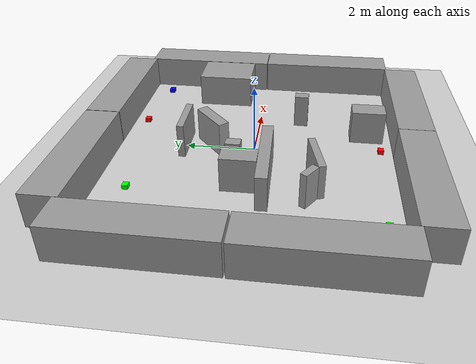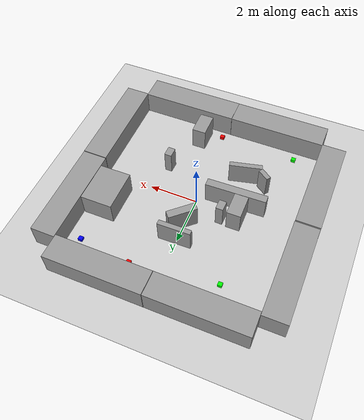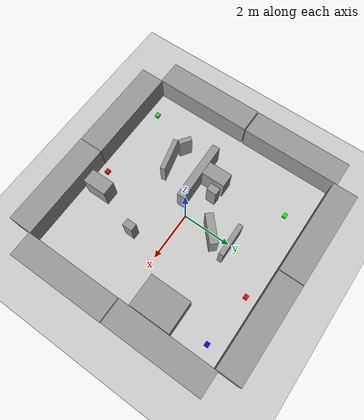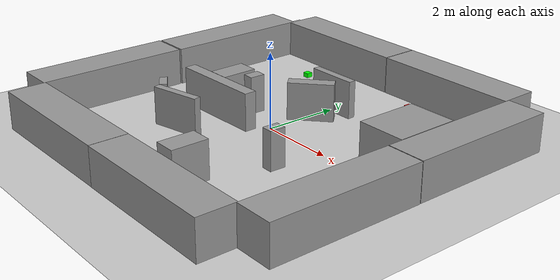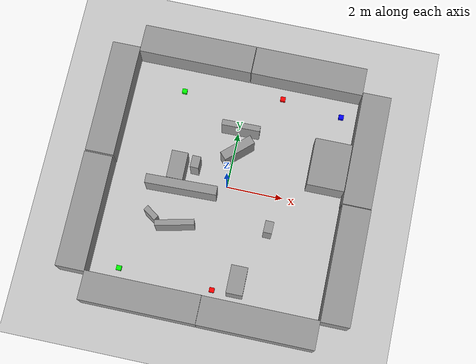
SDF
<sdf version="1.7">
 <world name="default">
  <light name="sun" type="directional">
   <cast_shadows>0</cast_shadows>
   <pose>0 0 10 0 -0 0</pose>
   <diffuse>0.8 0.8 0.8 1</diffuse>
   <specular>0.2 0.2 0.2 1</specular>
   <attenuation>
    <range>1000</range>
    <constant>0.9</constant>
    <linear>0.01</linear>
    <quadratic>0.001</quadratic>
   </attenuation>
   <direction>-0.5 0.1 -0.9</direction>
   <spot><inner_angle>0</inner_angle><outer_angle>0</outer_angle><falloff>0</falloff></spot>
  </light>
  <model name="ground_plane">
   <static>1</static>
   <link name="link">
    <collision name="collision">
     <geometry><plane><normal>0 0 1</normal><size>100 100</size></plane></geometry>
     <surface><friction><ode><mu>100</mu><mu2>50</mu2></ode></friction></surface>
    </collision>
    <visual name="visual">
     <cast_shadows>0</cast_shadows>
     <geometry><plane><normal>0 0 1</normal><size>100 100</size></plane></geometry>
     <material>
      <script><uri>file://media/materials/scripts/gazebo.material</uri><name>Gazebo/Grey</name></script>
     </material>
    </visual>
   </link>
  </model>
  <gravity>0 0 -9.8</gravity>
  <scene><ambient>0.4 0.4 0.4 1</ambient><background>0.7 0.7 0.7 1</background><shadows>1</shadows></scene>
  <magnetic_field>6e-06 2.3e-05 -4.2e-05</magnetic_field>
  <atmosphere type="adiabatic"/>
  <physics type="ode">
   <max_step_size>0.001</max_step_size>
   <real_time_factor>1</real_time_factor>
   <real_time_update_rate>1000</real_time_update_rate>
  </physics>
  <audio><device>default</device></audio>
  <spherical_coordinates>
   <surface_model>EARTH_WGS84</surface_model>
   <latitude_deg>0</latitude_deg>
   <longitude_deg>0</longitude_deg>
   <elevation>0</elevation>
   <heading_deg>0</heading_deg>
  </spherical_coordinates>
  <model name="unit_box">
   <pose>4.51241 -2.01446 0.499997 -0 5e-06 0.000332</pose>
   <link name="link">
    <inertial>
     <mass>1</mass>
     <inertia>
      <ixx>0.166667</ixx>
      <ixy>0</ixy>
      <ixz>0</ixz>
      <iyy>0.166667</iyy>
      <iyz>0</iyz>
      <izz>0.166667</izz>
     </inertia>
    </inertial>
    <collision name="collision"><geometry><box><size>1 4.0622 1</size></box></geometry></collision>
    <visual name="visual">
     <geometry><box><size>1 4.0622 1</size></box></geometry>
     <material>
      <script><name>Gazebo/Grey</name><uri>file://media/materials/scripts/gazebo.material</uri></script>
     </material>
    </visual>
   </link>
  </model>
  <model name="unit_box_clone">
   <pose>4.50288 2.07157 0.499196 0.000396 -0 1e-06</pose>
   <link name="link">
    <inertial>
     <mass>1</mass>
     <inertia>
      <ixx>0.166667</ixx>
      <ixy>0</ixy>
      <ixz>0</ixz>
      <iyy>0.166667</iyy>
      <iyz>0</iyz>
      <izz>0.166667</izz>
     </inertia>
    </inertial>
    <collision name="collision"><geometry><box><size>1 4.0622 1</size></box></geometry></collision>
    <visual name="visual">
     <geometry><box><size>1 4.0622 1</size></box></geometry>
     <material>
      <script><name>Gazebo/Grey</name><uri>file://media/materials/scripts/gazebo.material</uri></script>
     </material>
    </visual>
   </link>
  </model>
  <model name="unit_box_0">
   <pose>2.01016 4.48936 0.499283 0 -0.000362 -2e-06</pose>
   <link name="link">
    <inertial>
     <mass>1</mass>
     <inertia>
      <ixx>0.166667</ixx>
      <ixy>0</ixy>
      <ixz>0</ixz>
      <iyy>0.166667</iyy>
      <iyz>0</iyz>
      <izz>0.166667</izz>
     </inertia>
    </inertial>
    <collision name="collision"><geometry><box><size>3.96686 1 1</size></box></geometry></collision>
    <visual name="visual">
     <geometry><box><size>3.96686 1 1</size></box></geometry>
     <material>
      <script><name>Gazebo/Grey</name><uri>file://media/materials/scripts/gazebo.material</uri></script>
     </material>
    </visual>
   </link>
  </model>
  <model name="unit_box_0_clone">
   <pose>-1.99939 4.49012 0.499239 0 -0.000379 0</pose>
   <link name="link">
    <inertial>
     <mass>1</mass>
     <inertia>
      <ixx>0.166667</ixx>
      <ixy>0</ixy>
      <ixz>0</ixz>
      <iyy>0.166667</iyy>
      <iyz>0</iyz>
      <izz>0.166667</izz>
     </inertia>
    </inertial>
    <collision name="collision"><geometry><box><size>4.01582 1 1</size></box></geometry></collision>
    <visual name="visual">
     <geometry><box><size>4.01582 1 1</size></box></geometry>
     <material>
      <script><name>Gazebo/Grey</name><uri>file://media/materials/scripts/gazebo.material</uri></script>
     </material>
    </visual>
   </link>
  </model>
  <model name="unit_box_0_clone_clone">
   <pose>2.0043 -4.50415 0.499239 0 -0.000379 -7e-06</pose>
   <link name="link">
    <inertial>
     <mass>1</mass>
     <inertia>
      <ixx>0.166667</ixx>
      <ixy>0</ixy>
      <ixz>0</ixz>
      <iyy>0.166667</iyy>
      <iyz>0</iyz>
      <izz>0.166667</izz>
     </inertia>
    </inertial>
    <collision name="collision"><geometry><box><size>4.01582 1 1</size></box></geometry></collision>
    <visual name="visual">
     <geometry><box><size>4.01582 1 1</size></box></geometry>
     <material>
      <script><name>Gazebo/Grey</name><uri>file://media/materials/scripts/gazebo.material</uri></script>
     </material>
    </visual>
   </link>
  </model>
  <model name="unit_box_clone_0">
   <pose>-4.52525 -2.014 0.499997 0 -5e-06 1e-06</pose>
   <link name="link">
    <inertial>
     <mass>1</mass>
     <inertia>
      <ixx>0.166667</ixx>
      <ixy>0</ixy>
      <ixz>0</ixz>
      <iyy>0.166667</iyy>
      <iyz>0</iyz>
      <izz>0.166667</izz>
     </inertia>
    </inertial>
    <collision name="collision"><geometry><box><size>1 4.0622 1</size></box></geometry></collision>
    <visual name="visual">
     <geometry><box><size>1 4.0622 1</size></box></geometry>
     <material>
      <script><name>Gazebo/Grey</name><uri>file://media/materials/scripts/gazebo.material</uri></script>
     </material>
    </visual>
   </link>
  </model>
  <model name="unit_box_clone_1">
   <pose>-4.51398 2.09797 0.499196 0.000396 -0 1e-06</pose>
   <link name="link">
    <inertial>
     <mass>1</mass>
     <inertia>
      <ixx>0.166667</ixx>
      <ixy>0</ixy>
      <ixz>0</ixz>
      <iyy>0.166667</iyy>
      <iyz>0</iyz>
      <izz>0.166667</izz>
     </inertia>
    </inertial>
    <collision name="collision"><geometry><box><size>1 4.0622 1</size></box></geometry></collision>
    <visual name="visual">
     <geometry><box><size>1 4.0622 1</size></box></geometry>
     <material>
      <script><name>Gazebo/Grey</name><uri>file://media/materials/scripts/gazebo.material</uri></script>
     </material>
    </visual>
   </link>
  </model>
  <model name="unit_box_0_clone_clone_clone">
   <pose>-2.01688 -4.49982 0.499239 -0 -0.000379 1.3e-05</pose>
   <link name="link">
    <inertial>
     <mass>1</mass>
     <inertia>
      <ixx>0.166667</ixx>
      <ixy>0</ixy>
      <ixz>0</ixz>
      <iyy>0.166667</iyy>
      <iyz>0</iyz>
      <izz>0.166667</izz>
     </inertia>
    </inertial>
    <collision name="collision"><geometry><box><size>4.01582 1 1</size></box></geometry></collision>
    <visual name="visual">
     <geometry><box><size>4.01582 1 1</size></box></geometry>
     <material>
      <script><name>Gazebo/Grey</name><uri>file://media/materials/scripts/gazebo.material</uri></script>
     </material>
    </visual>
   </link>
  </model>
  <model name="unit_box_1_clone_1_clone_clone_1">
   <link name="link">
    <inertial>
     <mass>1</mass>
     <inertia>
      <ixx>0.166667</ixx>
      <ixy>0</ixy>
      <ixz>0</ixz>
      <iyy>0.166667</iyy>
      <iyz>0</iyz>
      <izz>0.166667</izz>
     </inertia>
    </inertial>
    <visual name="visual">
     <geometry><box><size>0.177426 0.164052 0.124949</size></box></geometry>
     <material>
      <script><name>Gazebo/Grey</name><uri>file://media/materials/scripts/gazebo.material</uri></script>
      <shader type="pixel"><normal_map>__default__</normal_map></shader>
      <ambient>0 0 1 1</ambient>
      <diffuse>0 0 1 1</diffuse>
      <specular>0 0 1 1</specular>
      <emissive>0 0 1 1</emissive>
      <lighting>1</lighting>
     </material>
    </visual>
    <collision name="collision">
     <geometry><box><size>0.177426 0.164052 0.124949</size></box></geometry>
     <surface>
      <friction>
       <ode><mu>1</mu><mu2>1</mu2><fdir1>0 0 0</fdir1><slip1>0</slip1><slip2>0</slip2></ode>
       <torsional>
        <coefficient>1</coefficient>
        <patch_radius>0</patch_radius>
        <surface_radius>0</surface_radius>
        <use_patch_radius>1</use_patch_radius>
        <ode><slip>0</slip></ode>
       </torsional>
      </friction>
      <bounce><restitution_coefficient>0</restitution_coefficient><threshold>1e+06</threshold></bounce>
      <contact>
       <collide_without_contact>0</collide_without_contact>
       <collide_without_contact_bitmask>1</collide_without_contact_bitmask>
       <collide_bitmask>1</collide_bitmask>
       <ode>
        <soft_cfm>0</soft_cfm>
        <soft_erp>0.2</soft_erp>
        <kp>1e+13</kp>
        <kd>1</kd>
        <max_vel>0.01</max_vel>
        <min_depth>0</min_depth>
       </ode>
       <bullet>
        <split_impulse>1</split_impulse>
        <split_impulse_penetration_threshold>-0.01</split_impulse_penetration_threshold>
        <soft_cfm>0</soft_cfm>
        <soft_erp>0.2</soft_erp>
        <kp>1e+13</kp>
        <kd>1</kd>
       </bullet>
      </contact>
     </surface>
    </collision>
   </link>
   <static>0</static>
   <pose>3.46266 3.35515 0.062475 -2e-06 2e-06 0.002748</pose>
  </model>
  <model name="unit_box_1_clone_1_clone">
   <link name="link">
    <inertial>
     <mass>1</mass>
     <inertia>
      <ixx>0.166667</ixx>
      <ixy>0</ixy>
      <ixz>0</ixz>
      <iyy>0.166667</iyy>
      <iyz>0</iyz>
      <izz>0.166667</izz>
     </inertia>
    </inertial>
    <visual name="visual">
     <geometry><box><size>0.177426 0.164052 0.124949</size></box></geometry>
     <material>
      <script><name>Gazebo/Grey</name><uri>file://media/materials/scripts/gazebo.material</uri></script>
      <shader type="pixel"><normal_map>__default__</normal_map></shader>
      <ambient>1 0 0 1</ambient>
      <diffuse>1 0 0 1</diffuse>
      <specular>1 0 0 1</specular>
      <emissive>1 0 0 1</emissive>
      <lighting>1</lighting>
     </material>
    </visual>
    <collision name="collision">
     <geometry><box><size>0.177426 0.164052 0.124949</size></box></geometry>
     <surface>
      <friction>
       <ode><mu>1</mu><mu2>1</mu2><fdir1>0 0 0</fdir1><slip1>0</slip1><slip2>0</slip2></ode>
       <torsional>
        <coefficient>1</coefficient>
        <patch_radius>0</patch_radius>
        <surface_radius>0</surface_radius>
        <use_patch_radius>1</use_patch_radius>
        <ode><slip>0</slip></ode>
       </torsional>
      </friction>
      <bounce><restitution_coefficient>0</restitution_coefficient><threshold>1e+06</threshold></bounce>
      <contact>
       <collide_without_contact>0</collide_without_contact>
       <collide_without_contact_bitmask>1</collide_without_contact_bitmask>
       <collide_bitmask>1</collide_bitmask>
       <ode>
        <soft_cfm>0</soft_cfm>
        <soft_erp>0.2</soft_erp>
        <kp>1e+13</kp>
        <kd>1</kd>
        <max_vel>0.01</max_vel>
        <min_depth>0</min_depth>
       </ode>
       <bullet>
        <split_impulse>1</split_impulse>
        <split_impulse_penetration_threshold>-0.01</split_impulse_penetration_threshold>
        <soft_cfm>0</soft_cfm>
        <soft_erp>0.2</soft_erp>
        <kp>1e+13</kp>
        <kd>1</kd>
       </bullet>
      </contact>
     </surface>
    </collision>
   </link>
   <static>0</static>
   <pose>0.250397 -3.65866 0.062474 -2e-06 4e-06 -1.2e-05</pose>
  </model>
  <model name="unit_box_1_clone_1_clone_clone_3">
   <link name="link">
    <inertial>
     <mass>1</mass>
     <inertia>
      <ixx>0.166667</ixx>
      <ixy>0</ixy>
      <ixz>0</ixz>
      <iyy>0.166667</iyy>
      <iyz>0</iyz>
      <izz>0.166667</izz>
     </inertia>
    </inertial>
    <visual name="visual">
     <geometry><box><size>0.177426 0.164052 0.124949</size></box></geometry>
     <material>
      <script><name>Gazebo/Grey</name><uri>file://media/materials/scripts/gazebo.material</uri></script>
      <shader type="pixel"><normal_map>__default__</normal_map></shader>
      <ambient>1 0 0 1</ambient>
      <diffuse>1 0 0 1</diffuse>
      <specular>1 0 0 1</specular>
      <emissive>1 0 0 1</emissive>
      <lighting>1</lighting>
     </material>
    </visual>
    <collision name="collision">
     <geometry><box><size>0.177426 0.164052 0.124949</size></box></geometry>
     <surface>
      <friction>
       <ode><mu>1</mu><mu2>1</mu2><fdir1>0 0 0</fdir1><slip1>0</slip1><slip2>0</slip2></ode>
       <torsional>
        <coefficient>1</coefficient>
        <patch_radius>0</patch_radius>
        <surface_radius>0</surface_radius>
        <use_patch_radius>1</use_patch_radius>
        <ode><slip>0</slip></ode>
       </torsional>
      </friction>
      <bounce><restitution_coefficient>0</restitution_coefficient><threshold>1e+06</threshold></bounce>
      <contact>
       <collide_without_contact>0</collide_without_contact>
       <collide_without_contact_bitmask>1</collide_without_contact_bitmask>
       <collide_bitmask>1</collide_bitmask>
       <ode>
        <soft_cfm>0</soft_cfm>
        <soft_erp>0.2</soft_erp>
        <kp>1e+13</kp>
        <kd>1</kd>
        <max_vel>0.01</max_vel>
        <min_depth>0</min_depth>
       </ode>
       <bullet>
        <split_impulse>1</split_impulse>
        <split_impulse_penetration_threshold>-0.01</split_impulse_penetration_threshold>
        <soft_cfm>0</soft_cfm>
        <soft_erp>0.2</soft_erp>
        <kp>1e+13</kp>
        <kd>1</kd>
       </bullet>
      </contact>
     </surface>
    </collision>
   </link>
   <static>0</static>
   <pose>1.29578 3.58646 0.062475 0 -4e-06 -1.8e-05</pose>
  </model>
  <model name="unit_box_1_clone_1_clone_clone_2_clone">
   <link name="link">
    <inertial>
     <mass>1</mass>
     <inertia>
      <ixx>0.166667</ixx>
      <ixy>0</ixy>
      <ixz>0</ixz>
      <iyy>0.166667</iyy>
      <iyz>0</iyz>
      <izz>0.166667</izz>
     </inertia>
    </inertial>
    <visual name="visual">
     <geometry><box><size>0.177426 0.164052 0.124949</size></box></geometry>
     <material>
      <script><name>Gazebo/Grey</name><uri>file://media/materials/scripts/gazebo.material</uri></script>
      <shader type="pixel"><normal_map>__default__</normal_map></shader>
      <ambient>0 1 0 1</ambient>
      <diffuse>0 1 0 1</diffuse>
      <specular>0 1 0 1</specular>
      <emissive>0 1 0 1</emissive>
      <lighting>1</lighting>
     </material>
    </visual>
    <collision name="collision">
     <geometry><box><size>0.177426 0.164052 0.124949</size></box></geometry>
     <surface>
      <friction>
       <ode><mu>1</mu><mu2>1</mu2><fdir1>0 0 0</fdir1><slip1>0</slip1><slip2>0</slip2></ode>
       <torsional>
        <coefficient>1</coefficient>
        <patch_radius>0</patch_radius>
        <surface_radius>0</surface_radius>
        <use_patch_radius>1</use_patch_radius>
        <ode><slip>0</slip></ode>
       </torsional>
      </friction>
      <bounce><restitution_coefficient>0</restitution_coefficient><threshold>1e+06</threshold></bounce>
      <contact>
       <collide_without_contact>0</collide_without_contact>
       <collide_without_contact_bitmask>1</collide_without_contact_bitmask>
       <collide_bitmask>1</collide_bitmask>
       <ode>
        <soft_cfm>0</soft_cfm>
        <soft_erp>0.2</soft_erp>
        <kp>1e+13</kp>
        <kd>1</kd>
        <max_vel>0.01</max_vel>
        <min_depth>0</min_depth>
       </ode>
       <bullet>
        <split_impulse>1</split_impulse>
        <split_impulse_penetration_threshold>-0.01</split_impulse_penetration_threshold>
        <soft_cfm>0</soft_cfm>
        <soft_erp>0.2</soft_erp>
        <kp>1e+13</kp>
        <kd>1</kd>
       </bullet>
      </contact>
     </surface>
    </collision>
   </link>
   <static>0</static>
   <pose>-3.03616 -3.57988 0.062475 -2e-06 2e-06 1.5e-05</pose>
  </model>
  <model name="unit_box_1_clone_0_clone">
   <link name="link">
    <inertial>
     <mass>1</mass>
     <inertia>
      <ixx>0.166667</ixx>
      <ixy>0</ixy>
      <ixz>0</ixz>
      <iyy>0.166667</iyy>
      <iyz>0</iyz>
      <izz>0.166667</izz>
     </inertia>
    </inertial>
    <visual name="visual">
     <geometry><box><size>1.34724 0.197957 1</size></box></geometry>
     <material>
      <script><name>Gazebo/Grey</name><uri>file://media/materials/scripts/gazebo.material</uri></script>
      <shader type="pixel"/>
     </material>
    </visual>
    <collision name="collision">
     <geometry><box><size>1.34724 0.197957 1</size></box></geometry>
     <surface>
      <friction>
       <ode><mu>1</mu><mu2>1</mu2><fdir1>0 0 0</fdir1><slip1>0</slip1><slip2>0</slip2></ode>
       <torsional>
        <coefficient>1</coefficient>
        <patch_radius>0</patch_radius>
        <surface_radius>0</surface_radius>
        <use_patch_radius>1</use_patch_radius>
        <ode><slip>0</slip></ode>
       </torsional>
      </friction>
      <bounce><restitution_coefficient>0</restitution_coefficient><threshold>1e+06</threshold></bounce>
      <contact>
       <collide_without_contact>0</collide_without_contact>
       <collide_without_contact_bitmask>1</collide_without_contact_bitmask>
       <collide_bitmask>1</collide_bitmask>
       <ode>
        <soft_cfm>0</soft_cfm>
        <soft_erp>0.2</soft_erp>
        <kp>1e+13</kp>
        <kd>1</kd>
        <max_vel>0.01</max_vel>
        <min_depth>0</min_depth>
       </ode>
       <bullet>
        <split_impulse>1</split_impulse>
        <split_impulse_penetration_threshold>-0.01</split_impulse_penetration_threshold>
        <soft_cfm>0</soft_cfm>
        <soft_erp>0.2</soft_erp>
        <kp>1e+13</kp>
        <kd>1</kd>
       </bullet>
      </contact>
     </surface>
    </collision>
   </link>
   <static>0</static>
   <pose>-1.44039 -1.78417 0.499997 0 -4e-06 0.230371</pose>
  </model>
  <model name="unit_box_1_clone">
   <pose>-1.78744 0.193907 0.5 0 -0 0.008269</pose>
   <link name="link">
    <inertial>
     <mass>1</mass>
     <inertia>
      <ixx>0.166667</ixx>
      <ixy>0</ixy>
      <ixz>0</ixz>
      <iyy>0.166667</iyy>
      <iyz>0</iyz>
      <izz>0.166667</izz>
     </inertia>
    </inertial>
    <collision name="collision"><geometry><box><size>0.569353 0.968966 1</size></box></geometry></collision>
    <visual name="visual">
     <geometry><box><size>0.569353 0.968966 1</size></box></geometry>
     <material>
      <script><name>Gazebo/Grey</name><uri>file://media/materials/scripts/gazebo.material</uri></script>
     </material>
    </visual>
   </link>
  </model>
  <model name="unit_box_1_clone_clone">
   <pose>-1.19834 0.431032 0.500001 1e-06 2e-06 -0.022531</pose>
   <link name="link">
    <inertial>
     <mass>1</mass>
     <inertia>
      <ixx>0.166667</ixx>
      <ixy>0</ixy>
      <ixz>0</ixz>
      <iyy>0.166667</iyy>
      <iyz>0</iyz>
      <izz>0.166667</izz>
     </inertia>
    </inertial>
    <collision name="collision"><geometry><box><size>0.298664 0.413367 1</size></box></geometry></collision>
    <visual name="visual">
     <geometry><box><size>0.298664 0.413367 1</size></box></geometry>
     <material>
      <script><name>Gazebo/Grey</name><uri>file://media/materials/scripts/gazebo.material</uri></script>
     </material>
    </visual>
   </link>
  </model>
  <model name="unit_box_1_clone_clone_0">
   <pose>-1.51054 -0.448536 0.499939 -1e-06 4.9e-05 0.026828</pose>
   <link name="link">
    <inertial>
     <mass>1</mass>
     <inertia>
      <ixx>0.166667</ixx>
      <ixy>0</ixy>
      <ixz>0</ixz>
      <iyy>0.166667</iyy>
      <iyz>0</iyz>
      <izz>0.166667</izz>
     </inertia>
    </inertial>
    <collision name="collision"><geometry><box><size>2.49086 0.319187 1</size></box></geometry></collision>
    <visual name="visual">
     <geometry><box><size>2.49086 0.319187 1</size></box></geometry>
     <material>
      <script><name>Gazebo/Grey</name><uri>file://media/materials/scripts/gazebo.material</uri></script>
     </material>
    </visual>
   </link>
  </model>
  <model name="unit_box_1_clone_clone_0_clone">
   <pose>0.111835 1.22814 0.5 0 -0 0.741598</pose>
   <link name="link">
    <inertial>
     <mass>1</mass>
     <inertia>
      <ixx>0.166667</ixx>
      <ixy>0</ixy>
      <ixz>0</ixz>
      <iyy>0.166667</iyy>
      <iyz>0</iyz>
      <izz>0.166667</izz>
     </inertia>
    </inertial>
    <collision name="collision"><geometry><box><size>1.18618 0.319187 1</size></box></geometry></collision>
    <visual name="visual">
     <geometry><box><size>1.18618 0.319187 1</size></box></geometry>
     <material>
      <script><name>Gazebo/Grey</name><uri>file://media/materials/scripts/gazebo.material</uri></script>
     </material>
    </visual>
   </link>
  </model>
  <model name="unit_box_1_clone_0_clone_clone">
   <link name="link">
    <inertial>
     <mass>1</mass>
     <inertia>
      <ixx>0.166667</ixx>
      <ixy>0</ixy>
      <ixz>0</ixz>
      <iyy>0.166667</iyy>
      <iyz>0</iyz>
      <izz>0.166667</izz>
     </inertia>
    </inertial>
    <visual name="visual">
     <geometry><box><size>1.34724 0.197957 1</size></box></geometry>
     <material>
      <script><name>Gazebo/Grey</name><uri>file://media/materials/scripts/gazebo.material</uri></script>
      <shader type="pixel"/>
     </material>
    </visual>
    <collision name="collision">
     <geometry><box><size>1.34724 0.197957 1</size></box></geometry>
     <surface>
      <friction>
       <ode><mu>1</mu><mu2>1</mu2><fdir1>0 0 0</fdir1><slip1>0</slip1><slip2>0</slip2></ode>
       <torsional>
        <coefficient>1</coefficient>
        <patch_radius>0</patch_radius>
        <surface_radius>0</surface_radius>
        <use_patch_radius>1</use_patch_radius>
        <ode><slip>0</slip></ode>
       </torsional>
      </friction>
      <bounce><restitution_coefficient>0</restitution_coefficient><threshold>1e+06</threshold></bounce>
      <contact>
       <collide_without_contact>0</collide_without_contact>
       <collide_without_contact_bitmask>1</collide_without_contact_bitmask>
       <collide_bitmask>1</collide_bitmask>
       <ode>
        <soft_cfm>0</soft_cfm>
        <soft_erp>0.2</soft_erp>
        <kp>1e+13</kp>
        <kd>1</kd>
        <max_vel>0.01</max_vel>
        <min_depth>0</min_depth>
       </ode>
       <bullet>
        <split_impulse>1</split_impulse>
        <split_impulse_penetration_threshold>-0.01</split_impulse_penetration_threshold>
        <soft_cfm>0</soft_cfm>
        <soft_erp>0.2</soft_erp>
        <kp>1e+13</kp>
        <kd>1</kd>
       </bullet>
      </contact>
     </surface>
    </collision>
   </link>
   <static>0</static>
   <pose>0.067402 2.03798 0.499998 0 3e-06 0.014311</pose>
  </model>
  <model name="unit_box_1_clone_0_clone_clone_0">
   <link name="link">
    <inertial>
     <mass>1</mass>
     <inertia>
      <ixx>0.166667</ixx>
      <ixy>0</ixy>
      <ixz>0</ixz>
      <iyy>0.166667</iyy>
      <iyz>0</iyz>
      <izz>0.166667</izz>
     </inertia>
    </inertial>
    <visual name="visual">
     <geometry><box><size>0.515287 0.197957 1</size></box></geometry>
     <material>
      <script><name>Gazebo/Grey</name><uri>file://media/materials/scripts/gazebo.material</uri></script>
      <shader type="pixel"/>
     </material>
    </visual>
    <collision name="collision">
     <geometry><box><size>0.515287 0.197957 1</size></box></geometry>
     <surface>
      <friction>
       <ode><mu>1</mu><mu2>1</mu2><fdir1>0 0 0</fdir1><slip1>0</slip1><slip2>0</slip2></ode>
       <torsional>
        <coefficient>1</coefficient>
        <patch_radius>0</patch_radius>
        <surface_radius>0</surface_radius>
        <use_patch_radius>1</use_patch_radius>
        <ode><slip>0</slip></ode>
       </torsional>
      </friction>
      <bounce><restitution_coefficient>0</restitution_coefficient><threshold>1e+06</threshold></bounce>
      <contact>
       <collide_without_contact>0</collide_without_contact>
       <collide_without_contact_bitmask>1</collide_without_contact_bitmask>
       <collide_bitmask>1</collide_bitmask>
       <ode>
        <soft_cfm>0</soft_cfm>
        <soft_erp>0.2</soft_erp>
        <kp>1e+13</kp>
        <kd>1</kd>
        <max_vel>0.01</max_vel>
        <min_depth>0</min_depth>
       </ode>
       <bullet>
        <split_impulse>1</split_impulse>
        <split_impulse_penetration_threshold>-0.01</split_impulse_penetration_threshold>
        <soft_cfm>0</soft_cfm>
        <soft_erp>0.2</soft_erp>
        <kp>1e+13</kp>
        <kd>1</kd>
       </bullet>
      </contact>
     </surface>
    </collision>
   </link>
   <static>0</static>
   <pose>-2.28655 -1.62973 0.500001 1e-06 2e-06 2.53971</pose>
  </model>
  <model name="unit_box_1_clone_clone_clone">
   <pose>1.7165 -1.28062 0.500001 -2e-06 -1e-06 -0.022502</pose>
   <link name="link">
    <inertial>
     <mass>1</mass>
     <inertia>
      <ixx>0.166667</ixx>
      <ixy>0</ixy>
      <ixz>0</ixz>
      <iyy>0.166667</iyy>
      <iyz>0</iyz>
      <izz>0.166667</izz>
     </inertia>
    </inertial>
    <collision name="collision"><geometry><box><size>0.298664 0.413367 1</size></box></geometry></collision>
    <visual name="visual">
     <geometry><box><size>0.298664 0.413367 1</size></box></geometry>
     <material>
      <script><name>Gazebo/Grey</name><uri>file://media/materials/scripts/gazebo.material</uri></script>
     </material>
    </visual>
   </link>
  </model>
  <model name="unit_box_1_clone_clone_1">
   <pose>3.33769 1.29282 0.5 0 -0 0.002626</pose>
   <link name="link">
    <inertial>
     <mass>1</mass>
     <inertia>
      <ixx>0.166667</ixx>
      <ixy>0</ixy>
      <ixz>0</ixz>
      <iyy>0.166667</iyy>
      <iyz>0</iyz>
      <izz>0.166667</izz>
     </inertia>
    </inertial>
    <collision name="collision"><geometry><box><size>1.2958 1.68155 1</size></box></geometry></collision>
    <visual name="visual">
     <geometry><box><size>1.2958 1.68155 1</size></box></geometry>
     <material>
      <script><name>Gazebo/Grey</name><uri>file://media/materials/scripts/gazebo.material</uri></script>
     </material>
    </visual>
   </link>
  </model>
  <model name="unit_box_1_clone_clone_2">
   <pose>1.03809 -3.26797 0.5 0 -0 0.002592</pose>
   <link name="link">
    <inertial>
     <mass>1</mass>
     <inertia>
      <ixx>0.166667</ixx>
      <ixy>0</ixy>
      <ixz>0</ixz>
      <iyy>0.166667</iyy>
      <iyz>0</iyz>
      <izz>0.166667</izz>
     </inertia>
    </inertial>
    <collision name="collision"><geometry><box><size>0.569353 0.968965 1</size></box></geometry></collision>
    <visual name="visual">
     <geometry><box><size>0.569353 0.968965 1</size></box></geometry>
     <material>
      <script><name>Gazebo/Grey</name><uri>file://media/materials/scripts/gazebo.material</uri></script>
     </material>
    </visual>
   </link>
  </model>
  <model name="unit_box_1_clone_1_clone_clone_2_clone_clone">
   <link name="link">
    <inertial>
     <mass>1</mass>
     <inertia>
      <ixx>0.166667</ixx>
      <ixy>0</ixy>
      <ixz>0</ixz>
      <iyy>0.166667</iyy>
      <iyz>0</iyz>
      <izz>0.166667</izz>
     </inertia>
    </inertial>
    <visual name="visual">
     <geometry><box><size>0.177426 0.164052 0.124949</size></box></geometry>
     <material>
      <script><name>Gazebo/Grey</name><uri>file://media/materials/scripts/gazebo.material</uri></script>
      <shader type="pixel"><normal_map>__default__</normal_map></shader>
      <ambient>0 1 0 1</ambient>
      <diffuse>0 1 0 1</diffuse>
      <specular>0 1 0 1</specular>
      <emissive>0 1 0 1</emissive>
      <lighting>1</lighting>
     </material>
    </visual>
    <collision name="collision">
     <geometry><box><size>0.177426 0.164052 0.124949</size></box></geometry>
     <surface>
      <friction>
       <ode><mu>1</mu><mu2>1</mu2><fdir1>0 0 0</fdir1><slip1>0</slip1><slip2>0</slip2></ode>
       <torsional>
        <coefficient>1</coefficient>
        <patch_radius>0</patch_radius>
        <surface_radius>0</surface_radius>
        <use_patch_radius>1</use_patch_radius>
        <ode><slip>0</slip></ode>
       </torsional>
      </friction>
      <bounce><restitution_coefficient>0</restitution_coefficient><threshold>1e+06</threshold></bounce>
      <contact>
       <collide_without_contact>0</collide_without_contact>
       <collide_without_contact_bitmask>1</collide_without_contact_bitmask>
       <collide_bitmask>1</collide_bitmask>
       <ode>
        <soft_cfm>0</soft_cfm>
        <soft_erp>0.2</soft_erp>
        <kp>1e+13</kp>
        <kd>1</kd>
        <max_vel>0.01</max_vel>
        <min_depth>0</min_depth>
       </ode>
       <bullet>
        <split_impulse>1</split_impulse>
        <split_impulse_penetration_threshold>-0.01</split_impulse_penetration_threshold>
        <soft_cfm>0</soft_cfm>
        <soft_erp>0.2</soft_erp>
        <kp>1e+13</kp>
        <kd>1</kd>
       </bullet>
      </contact>
     </surface>
    </collision>
   </link>
   <static>0</static>
   <pose>-2.22318 3.14739 0.062475 -2e-06 2e-06 1.5e-05</pose>
  </model>
 </world>
</sdf>
